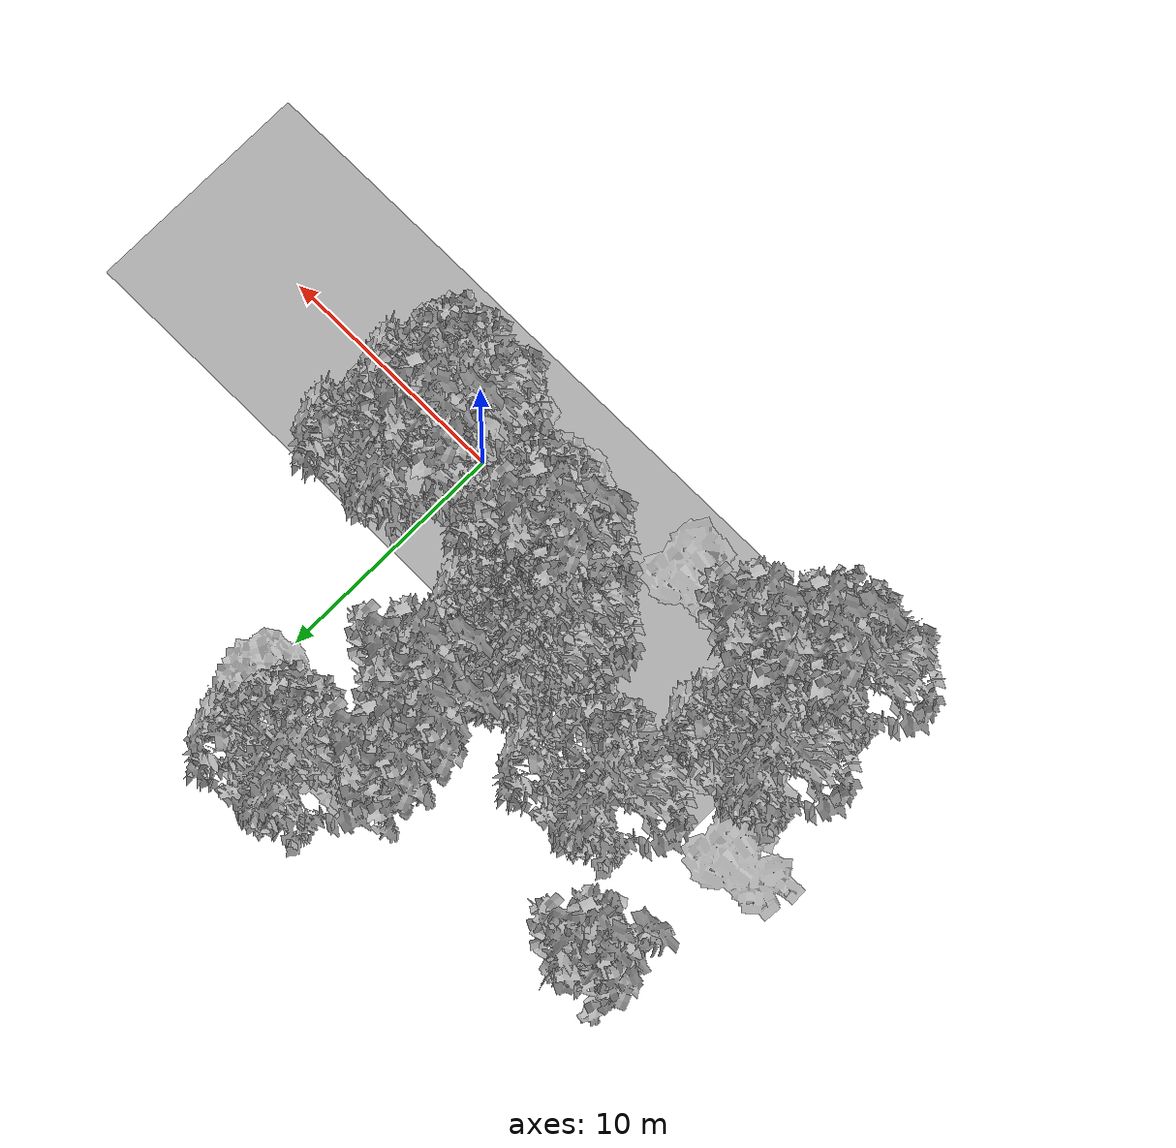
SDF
<sdf version="1.7">
 <world name="default">
  <model name="ground_plane">
   <static>1</static>
   <link name="link">
    <collision name="collision">
     <pose>-50 0 0 0 -0 0</pose>
     <geometry><plane><normal>0 0 1</normal><size>100 100</size></plane></geometry>
     <surface><contact><ode><min_depth>0.01</min_depth><max_vel>0</max_vel></ode></contact></surface>
    </collision>
    <visual name="grass">
     <cast_shadows>0</cast_shadows>
     <geometry>
      <mesh>
       <scale>0.5814285714285714 0.18142857142857144 0.1</scale>
       <uri>file://grass_plane/meshes/grass_plane.dae</uri>
      </mesh>
     </geometry>
    </visual>
   </link>
  </model>
  <model name="Tree 2">
   <static>1</static>
   <pose>-16.137026660960977 1.9340468512155624 0 1.57079 -0 0</pose>
   <link name="link">
    <collision name="collision">
     <geometry><mesh><scale>3.5 5 3.5</scale><uri>model://tree_2/meshes/tree_2.obj</uri></mesh></geometry>
    </collision>
    <visual name="visual">
     <geometry><mesh><scale>3.5 5 3.5</scale><uri>model://tree_2/meshes/tree_2.obj</uri></mesh></geometry>
    </visual>
   </link>
  </model>
  <model name="Tree 21">
   <static>1</static>
   <pose>-0.5704055620577222 12.196740696156223 0 1.57079 -0 0</pose>
   <link name="link">
    <collision name="collision">
     <geometry><mesh><scale>4 2.5 4</scale><uri>model://tree_1/meshes/tree_1.obj</uri></mesh></geometry>
    </collision>
    <visual name="visual">
     <geometry><mesh><scale>4 2.5 4</scale><uri>model://tree_1/meshes/tree_1.obj</uri></mesh></geometry>
    </visual>
   </link>
  </model>
  <model name="Tree 36">
   <static>1</static>
   <pose>-4.834483947540257 1.7914259409513065 0 1.57079 -0 0</pose>
   <link name="link">
    <collision name="collision">
     <geometry><mesh><scale>3.5 5 3.5</scale><uri>model://tree_2/meshes/tree_2.obj</uri></mesh></geometry>
    </collision>
    <visual name="visual">
     <geometry><mesh><scale>3.5 5 3.5</scale><uri>model://tree_2/meshes/tree_2.obj</uri></mesh></geometry>
    </visual>
   </link>
  </model>
  <model name="Tree 38">
   <static>1</static>
   <pose>-7.344013641124725 5.725249584508585 0 1.57079 -0 0</pose>
   <link name="link">
    <collision name="collision">
     <geometry><mesh><scale>3.5 5 3.5</scale><uri>model://tree_2/meshes/tree_2.obj</uri></mesh></geometry>
    </collision>
    <visual name="visual">
     <geometry><mesh><scale>3.5 5 3.5</scale><uri>model://tree_2/meshes/tree_2.obj</uri></mesh></geometry>
    </visual>
   </link>
  </model>
  <model name="Tree 48">
   <static>1</static>
   <pose>1.275237907526865 3.575007440442075 0 1.57079 -0 0</pose>
   <link name="link">
    <collision name="collision">
     <geometry><mesh><scale>3.5 5 3.5</scale><uri>model://tree_2/meshes/tree_2.obj</uri></mesh></geometry>
    </collision>
    <visual name="visual">
     <geometry><mesh><scale>3.5 5 3.5</scale><uri>model://tree_2/meshes/tree_2.obj</uri></mesh></geometry>
    </visual>
   </link>
  </model>
  <model name="Tree 61">
   <static>1</static>
   <pose>-13.804670133262547 -0.41392470459726205 0 1.57079 -0 0</pose>
   <link name="link">
    <collision name="collision">
     <geometry><mesh><scale>3.5 5 3.5</scale><uri>model://tree_9/meshes/tree_9.obj</uri></mesh></geometry>
    </collision>
    <visual name="visual">
     <geometry><mesh><scale>3.5 5 3.5</scale><uri>model://tree_9/meshes/tree_9.obj</uri></mesh></geometry>
    </visual>
   </link>
  </model>
  <model name="Tree 77">
   <static>1</static>
   <pose>-15.466161398244836 1.5500061539197496 0 1.57079 -0 0</pose>
   <link name="link">
    <collision name="collision">
     <geometry><mesh><scale>3 2 3</scale><uri>model://tree_3/meshes/tree_3.obj</uri></mesh></geometry>
    </collision>
    <visual name="visual">
     <geometry><mesh><scale>3 2 3</scale><uri>model://tree_3/meshes/tree_3.obj</uri></mesh></geometry>
    </visual>
   </link>
  </model>
  <model name="Tree 102">
   <static>1</static>
   <pose>-6.909020161439933 4.618056337545454 0 1.57079 -0 0</pose>
   <link name="link">
    <collision name="collision">
     <geometry><mesh><scale>3.5 5 3.5</scale><uri>model://tree_2/meshes/tree_2.obj</uri></mesh></geometry>
    </collision>
    <visual name="visual">
     <geometry><mesh><scale>3.5 5 3.5</scale><uri>model://tree_2/meshes/tree_2.obj</uri></mesh></geometry>
    </visual>
   </link>
  </model>
  <model name="Tree 104">
   <static>1</static>
   <pose>-9.294252825564584 -2.632257471209236 0 1.57079 -0 0</pose>
   <link name="link">
    <collision name="collision">
     <geometry><mesh><scale>3 2 3</scale><uri>model://tree_3/meshes/tree_3.obj</uri></mesh></geometry>
    </collision>
    <visual name="visual">
     <geometry><mesh><scale>3 2 3</scale><uri>model://tree_3/meshes/tree_3.obj</uri></mesh></geometry>
    </visual>
   </link>
  </model>
  <model name="Tree 110">
   <static>1</static>
   <pose>-7.061640931208657 3.8453669516716005 0 1.57079 -0 0</pose>
   <link name="link">
    <collision name="collision">
     <geometry><mesh><scale>3.5 5 3.5</scale><uri>model://tree_2/meshes/tree_2.obj</uri></mesh></geometry>
    </collision>
    <visual name="visual">
     <geometry><mesh><scale>3.5 5 3.5</scale><uri>model://tree_2/meshes/tree_2.obj</uri></mesh></geometry>
    </visual>
   </link>
  </model>
  <model name="Tree 119">
   <static>1</static>
   <pose>-6.000297366430765 9.32172976209587 0 1.57079 -0 0</pose>
   <link name="link">
    <collision name="collision">
     <geometry><mesh><scale>3.5 5 3.5</scale><uri>model://tree_9/meshes/tree_9.obj</uri></mesh></geometry>
    </collision>
    <visual name="visual">
     <geometry><mesh><scale>3.5 5 3.5</scale><uri>model://tree_9/meshes/tree_9.obj</uri></mesh></geometry>
    </visual>
   </link>
  </model>
  <model name="Tree 131">
   <static>1</static>
   <pose>1.2267659981769157 0.280330996075568 0 1.57079 -0 0</pose>
   <link name="link">
    <collision name="collision">
     <geometry><mesh><scale>3.5 5 3.5</scale><uri>model://tree_2/meshes/tree_2.obj</uri></mesh></geometry>
    </collision>
    <visual name="visual">
     <geometry><mesh><scale>3.5 5 3.5</scale><uri>model://tree_2/meshes/tree_2.obj</uri></mesh></geometry>
    </visual>
   </link>
  </model>
  <model name="Tree 133">
   <static>1</static>
   <pose>-4.330299140332507 14.384743041792689 0 1.57079 -0 0</pose>
   <link name="link">
    <collision name="collision">
     <geometry><mesh><scale>3.5 5 3.5</scale><uri>model://tree_2/meshes/tree_2.obj</uri></mesh></geometry>
    </collision>
    <visual name="visual">
     <geometry><mesh><scale>3.5 5 3.5</scale><uri>model://tree_2/meshes/tree_2.obj</uri></mesh></geometry>
    </visual>
   </link>
  </model>
  <model name="Tree 148">
   <static>1</static>
   <pose>-13.765304372594116 0.5577901761232447 0 1.57079 -0 0</pose>
   <link name="link">
    <collision name="collision">
     <geometry><mesh><scale>4 2.5 4</scale><uri>model://tree_1/meshes/tree_1.obj</uri></mesh></geometry>
    </collision>
    <visual name="visual">
     <geometry><mesh><scale>4 2.5 4</scale><uri>model://tree_1/meshes/tree_1.obj</uri></mesh></geometry>
    </visual>
   </link>
  </model>
  <model name="Tree 153">
   <static>1</static>
   <pose>-7.752729576068603 10.706620637196323 0 1.57079 -0 0</pose>
   <link name="link">
    <collision name="collision">
     <geometry><mesh><scale>3.5 5 3.5</scale><uri>model://tree_9/meshes/tree_9.obj</uri></mesh></geometry>
    </collision>
    <visual name="visual">
     <geometry><mesh><scale>3.5 5 3.5</scale><uri>model://tree_9/meshes/tree_9.obj</uri></mesh></geometry>
    </visual>
   </link>
  </model>
  <model name="Tree 185">
   <static>1</static>
   <pose>-16.117973399366278 -2.409987691282936 0 1.57079 -0 0</pose>
   <link name="link">
    <collision name="collision">
     <geometry><mesh><scale>3.5 5 3.5</scale><uri>model://tree_2/meshes/tree_2.obj</uri></mesh></geometry>
    </collision>
    <visual name="visual">
     <geometry><mesh><scale>3.5 5 3.5</scale><uri>model://tree_2/meshes/tree_2.obj</uri></mesh></geometry>
    </visual>
   </link>
  </model>
  <model name="Tree 191">
   <static>1</static>
   <pose>0.1516649069720657 2.6646283444602794 0 1.57079 -0 0</pose>
   <link name="link">
    <collision name="collision">
     <geometry><mesh><scale>3.5 5 3.5</scale><uri>model://tree_9/meshes/tree_9.obj</uri></mesh></geometry>
    </collision>
    <visual name="visual">
     <geometry><mesh><scale>3.5 5 3.5</scale><uri>model://tree_9/meshes/tree_9.obj</uri></mesh></geometry>
    </visual>
   </link>
  </model>
  <model name="Tree 203">
   <static>1</static>
   <pose>-12.865127673252907 7.048694178321078 0 1.57079 -0 0</pose>
   <link name="link">
    <collision name="collision">
     <geometry><mesh><scale>3.5 5 3.5</scale><uri>model://tree_2/meshes/tree_2.obj</uri></mesh></geometry>
    </collision>
    <visual name="visual">
     <geometry><mesh><scale>3.5 5 3.5</scale><uri>model://tree_2/meshes/tree_2.obj</uri></mesh></geometry>
    </visual>
   </link>
  </model>
  <model name="Tree 205">
   <static>1</static>
   <pose>-15.586158385504511 -1.6356132519512894 0 1.57079 -0 0</pose>
   <link name="link">
    <collision name="collision">
     <geometry><mesh><scale>3.5 5 3.5</scale><uri>model://tree_9/meshes/tree_9.obj</uri></mesh></geometry>
    </collision>
    <visual name="visual">
     <geometry><mesh><scale>3.5 5 3.5</scale><uri>model://tree_9/meshes/tree_9.obj</uri></mesh></geometry>
    </visual>
   </link>
  </model>
  <model name="Tree 212">
   <static>1</static>
   <pose>-3.2963624416509134 -1.169793168176719 0 1.57079 -0 0</pose>
   <link name="link">
    <collision name="collision">
     <geometry><mesh><scale>4 2.5 4</scale><uri>model://tree_1/meshes/tree_1.obj</uri></mesh></geometry>
    </collision>
    <visual name="visual">
     <geometry><mesh><scale>4 2.5 4</scale><uri>model://tree_1/meshes/tree_1.obj</uri></mesh></geometry>
    </visual>
   </link>
  </model>
  <model name="Tree 213">
   <static>1</static>
   <pose>-5.753278816688052 2.396786832041702 0 1.57079 -0 0</pose>
   <link name="link">
    <collision name="collision">
     <geometry><mesh><scale>3.5 5 3.5</scale><uri>model://tree_9/meshes/tree_9.obj</uri></mesh></geometry>
    </collision>
    <visual name="visual">
     <geometry><mesh><scale>3.5 5 3.5</scale><uri>model://tree_9/meshes/tree_9.obj</uri></mesh></geometry>
    </visual>
   </link>
  </model>
  <model name="Tree 218">
   <static>1</static>
   <pose>-18.04987088688269 3.9985787107114064 0 1.57079 -0 0</pose>
   <link name="link">
    <collision name="collision">
     <geometry><mesh><scale>3 2 3</scale><uri>model://tree_3/meshes/tree_3.obj</uri></mesh></geometry>
    </collision>
    <visual name="visual">
     <geometry><mesh><scale>3 2 3</scale><uri>model://tree_3/meshes/tree_3.obj</uri></mesh></geometry>
    </visual>
   </link>
  </model>
  <model name="Tree 257">
   <static>1</static>
   <pose>-0.707220915835002 -1.9023215771992792 0 1.57079 -0 0</pose>
   <link name="link">
    <collision name="collision">
     <geometry><mesh><scale>3 2 3</scale><uri>model://tree_3/meshes/tree_3.obj</uri></mesh></geometry>
    </collision>
    <visual name="visual">
     <geometry><mesh><scale>3 2 3</scale><uri>model://tree_3/meshes/tree_3.obj</uri></mesh></geometry>
    </visual>
   </link>
  </model>
  <model name="Tree 261">
   <static>1</static>
   <pose>-7.682180886109194 12.570448385696071 0 1.57079 -0 0</pose>
   <link name="link">
    <collision name="collision">
     <geometry><mesh><scale>3.5 5 3.5</scale><uri>model://tree_9/meshes/tree_9.obj</uri></mesh></geometry>
    </collision>
    <visual name="visual">
     <geometry><mesh><scale>3.5 5 3.5</scale><uri>model://tree_9/meshes/tree_9.obj</uri></mesh></geometry>
    </visual>
   </link>
  </model>
  <model name="Tree 265">
   <static>1</static>
   <pose>-4.613409596303384 12.320140624598483 0 1.57079 -0 0</pose>
   <link name="link">
    <collision name="collision">
     <geometry><mesh><scale>3 2 3</scale><uri>model://tree_3/meshes/tree_3.obj</uri></mesh></geometry>
    </collision>
    <visual name="visual">
     <geometry><mesh><scale>3 2 3</scale><uri>model://tree_3/meshes/tree_3.obj</uri></mesh></geometry>
    </visual>
   </link>
  </model>
  <model name="Tree 298">
   <static>1</static>
   <pose>-17.938946200962132 12.160730536488952 0 1.57079 -0 0</pose>
   <link name="link">
    <collision name="collision">
     <geometry><mesh><scale>3.5 5 3.5</scale><uri>model://tree_9/meshes/tree_9.obj</uri></mesh></geometry>
    </collision>
    <visual name="visual">
     <geometry><mesh><scale>3.5 5 3.5</scale><uri>model://tree_9/meshes/tree_9.obj</uri></mesh></geometry>
    </visual>
   </link>
  </model>
 </world>
</sdf>
